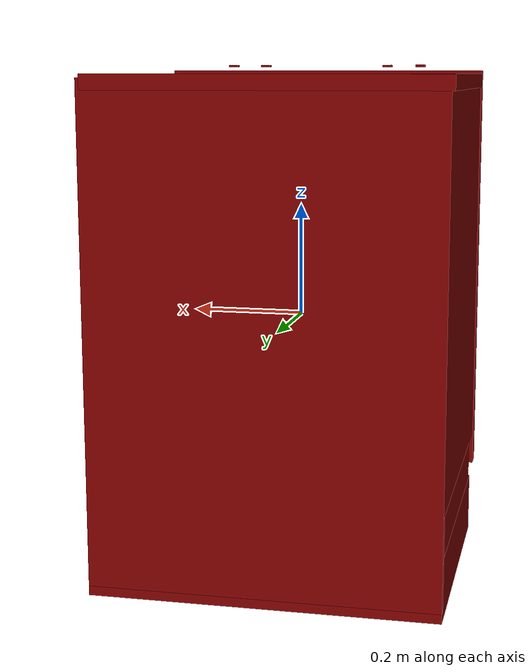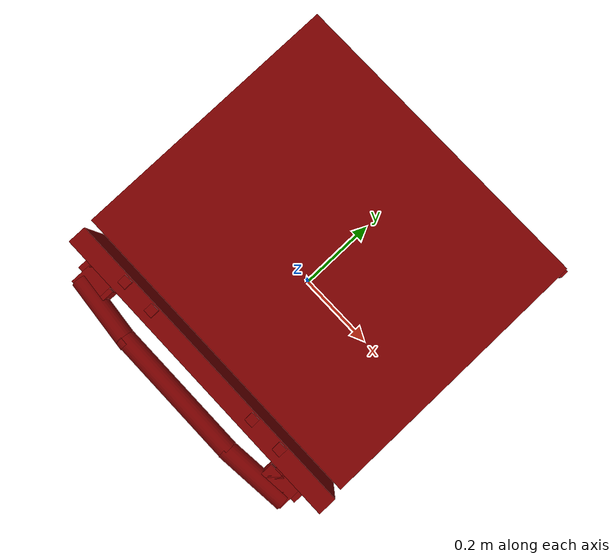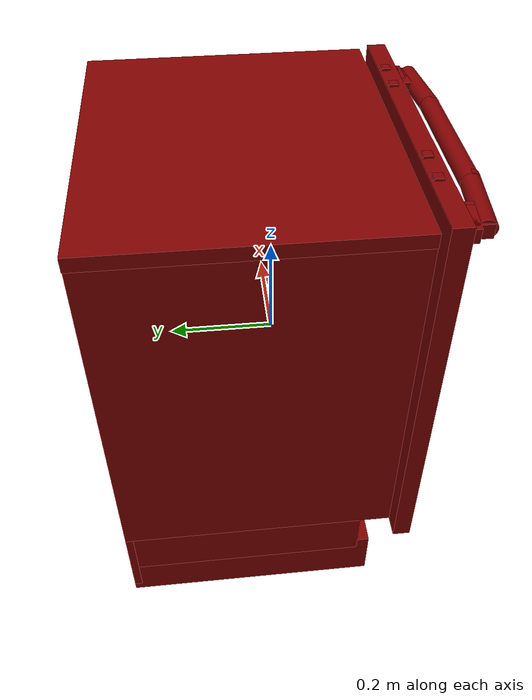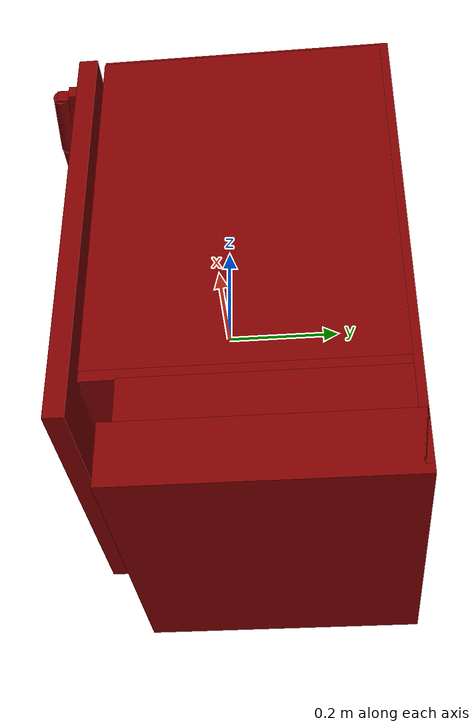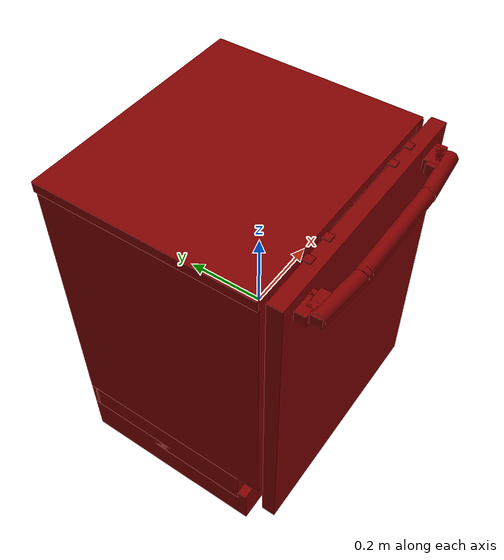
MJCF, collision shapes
<mujoco model="model">
  <compiler angle="radian"/>
  <asset>
    <mesh file="visuals/Body001.obj" name="Body001_vis"/>
    <mesh file="visuals/Button001.obj" name="Button001_vis"/>
    <mesh file="visuals/Button002.obj" name="Button002_vis"/>
    <mesh file="visuals/Button003.obj" name="Button003_vis"/>
    <mesh file="visuals/Button004.obj" name="Button004_vis"/>
    <mesh file="visuals/Container001.obj" name="Container001_vis"/>
    <mesh file="visuals/Container002.obj" name="Container002_vis"/>
    <mesh file="visuals/Door001.obj" name="Door001_vis"/>
    <texture file="visuals/T_BC001.png" name="Body001_material" type="2d"/>
    <material name="Body001_material" rgba="1 1 1 1.0" texture="Body001_material" shininess="0.2512328028678894" specular="2"/>
    <texture file="visuals/T_BC001.png" name="Container001_material" type="2d"/>
    <material name="Container001_material" rgba="1 1 1 1.0" texture="Container001_material" shininess="0.2512328028678894" specular="4"/>
    <texture file="visuals/T_BC001.png" name="Container002_material" type="2d"/>
    <material name="Container002_material" rgba="1 1 1 1.0" texture="Container002_material" shininess="0.2512328028678894" specular="4"/>
    <texture file="visuals/T_BC001.png" name="Door001_material" type="2d"/>
    <material name="Door001_material" rgba="1 1 1 1.0" texture="Door001_material" shininess="0.2512328028678894" specular="2"/>
    <texture file="visuals/T_BC001.png" name="Button001_material" type="2d"/>
    <material name="Button001_material" rgba="1 1 1 1.0" texture="Button001_material" shininess="0.2512328028678894" specular="0.3103448502657381"/>
    <texture file="visuals/T_BC001.png" name="Button002_material" type="2d"/>
    <material name="Button002_material" rgba="1 1 1 1.0" texture="Button002_material" shininess="0.2512328028678894" specular="0.3103448502657381"/>
    <texture file="visuals/T_BC001.png" name="Button003_material" type="2d"/>
    <material name="Button003_material" rgba="1 1 1 1.0" texture="Button003_material" shininess="0.2512328028678894" specular="0.3103448502657381"/>
    <texture file="visuals/T_BC001.png" name="Button004_material" type="2d"/>
    <material name="Button004_material" rgba="1 1 1 1.0" texture="Button004_material" shininess="0.2512328028678894" specular="0.3103448502657381"/>
  </asset>
  <default>
    <default class="visual">
      <geom conaffinity="0" contype="0" group="1" type="mesh"/>
    </default>
    <default class="collision">
      <geom group="0" rgba="0.5 0 0 0.5"/>
    </default>
    <default class="spawn">
      <geom group="0" rgba="1 1 1 0.5" contype="0" conaffinity="0"/>
      <site group="0" rgba="1 1 1 0.5"/>
    </default>
    <default class="region">
      <geom group="1" conaffinity="0" contype="0" rgba="0 1 0 0"/>
    </default>
  </default>
  <worldbody>
    <body>
      <body name="object">
        <geom mesh="Body001_vis" type="mesh" solimp="0.998 0.998 0.001" solref="0.001 1" density="100" friction="0.95 0.3 0.1" class="visual" material="Body001_material"/>
        <geom class="collision" type="box" pos="0.002524 0.073281 -0.395688" size="0.3035244047641754 0.24403943121433258 0.053582970052957535" quat="1.0 0.0 0.0 0.0"/>
        <geom class="collision" type="box" pos="-0.002856 0.056322 0.421351" size="0.3031924366950989 0.26099902391433716 0.012723494321107864" quat="1.0 0.0 0.0 0.0"/>
        <geom class="collision" type="box" pos="0.288190 0.055786 0.078783" size="0.014059570617973804 0.26153454184532166 0.3489367961883545" quat="1.0 0.0 0.0 0.0"/>
        <geom class="collision" type="box" pos="0.002524 0.309837 -0.002558" size="0.3035244345664978 0.0074838194996118546 0.430277943611145" quat="1.0 0.0 0.0 0.0"/>
        <geom class="collision" type="box" pos="-0.286941 0.055786 0.078783" size="0.01405956968665123 0.26153454184532166 0.3489367961883545" quat="1.0 0.0 0.0 0.0"/>
        <geom class="collision" type="box" pos="0.002524 0.085257 -0.317320" size="0.3035244047641754 0.23206323385238647 0.0508718378841877" quat="1.0 0.0 0.0 0.0"/>
        <geom class="collision" type="box" pos="0.002524 0.056321 -0.260355" size="0.3035244047641754 0.26099902391433716 0.009799429215490818" quat="1.0 0.0 0.0 0.0"/>
        <geom class="collision" type="box" pos="0.276601 0.043610 0.331709" size="0.012967003509402275 0.22902917861938477 0.02074013464152813" quat="1.0 0.0 0.0 0.0"/>
        <geom class="collision" type="box" pos="-0.276590 0.043610 0.331709" size="0.012967003509402275 0.22902917861938477 0.02074013464152813" quat="1.0 0.0 0.0 0.0"/>
        <body name="Container001">
          <joint axis="0.0 -1.0 0.0" pos="-0.045364 0.043634 0.116721" limited="true" name="Container001_joint" range="0.0 0.15" type="slide" damping="1" frictionloss="1" armature=".01" stiffness="0.05"/>
          <geom mesh="Container001_vis" type="mesh" solimp="0.998 0.998 0.001" solref="0.001 1" density="100" friction="0.95 0.3 0.1" class="visual" material="Container001_material"/>
          <geom class="collision" type="box" pos="-0.184967 -0.195772 0.131210" size="0.08121334761381149 0.004792514257133007 0.08863174915313721" quat="1.0 0.0 0.0 0.0"/>
          <geom class="collision" type="box" pos="0.265359 0.029831 0.131210" size="0.003997690510004759 0.23039482533931732 0.0886317566037178" quat="1.0 0.0 0.0 0.0"/>
          <geom class="collision" type="box" pos="-0.261340 0.029831 0.131210" size="0.00494289118796587 0.23039482533931732 0.0886317640542984" quat="1.0 0.0 0.0 0.0"/>
          <geom class="collision" type="box" pos="0.003119 0.029831 0.053743" size="0.2692970931529999 0.2303948551416397 0.01116540189832449" quat="1.0 0.0 0.0 0.0"/>
          <geom class="collision" type="box" pos="0.003119 0.256363 0.131210" size="0.2692970931529999 0.0034810062497854233 0.0886317789554596" quat="1.0 0.0 0.0 0.0"/>
          <geom class="collision" type="box" pos="0.183639 -0.195772 0.131210" size="0.08121342211961746 0.00479251891374588 0.08863182365894318" quat="1.0 0.0 0.0 0.0"/>
          <geom class="collision" type="box" pos="-0.002763 -0.195772 0.094356" size="0.13121794164180756 0.004792519845068455 0.051778048276901245" quat="1.0 0.0 0.0 0.0"/>
          <geom class="collision" type="box" pos="0.000625 -0.198133 0.217197" size="0.10349351167678833 0.005681253038346767 0.018857372924685478" quat="1.0 0.0 0.0 0.0"/>
          <geom class="collision" type="box" pos="0.256773 0.029831 0.099798" size="0.007156695704907179 0.23039503395557404 0.05722030624747276" quat="1.0 0.0 0.0 0.0"/>
          <geom class="collision" type="box" pos="0.191162 0.029831 0.090479" size="0.00422767223790288 0.23039613664150238 0.04284008592367172" quat="0.9657436609268188 0.0 -0.2594980001449585 0.0"/>
          <geom class="collision" type="box" pos="-0.153892 0.029831 0.093157" size="0.00422767223790288 0.23039613664150238 0.04284008592367172" quat="0.9915580153465271 0.0 -0.1296636015176773 0.0"/>
          <geom class="collision" type="box" pos="-0.082821 0.029831 0.106004" size="0.00422767223790288 0.23039613664150238 0.047605011612176895" quat="0.9893168210983276 0.0 0.14578141272068024 0.0"/>
          <geom class="collision" type="box" pos="0.059156 0.029831 0.103708" size="0.00422767223790288 0.23039613664150238 0.047605011612176895" quat="0.9893168210983276 0.0 0.14578141272068024 0.0"/>
          <geom class="collision" type="box" pos="-0.220577 0.029831 0.185854" size="0.00422767223790288 0.23039613664150238 0.047605011612176895" quat="0.8643173575401306 0.0 0.5029467940330505 0.0"/>
          <geom class="collision" type="box" pos="0.003764 0.242273 0.131210" size="0.05590777471661568 0.010627182200551033 0.08863186091184616" quat="1.0 0.0 0.0 0.0"/>
        </body>
        <body name="Container002">
          <joint axis="0.0 -1.0 0.0" pos="0.010853 0.035898 -0.188105" limited="true" name="Container002_joint" range="0.0 0.005" type="slide" damping="1" frictionloss="1" armature=".01" stiffness="0.05"/>
          <geom mesh="Container002_vis" type="mesh" solimp="0.998 0.998 0.001" solref="0.001 1" density="100" friction="0.95 0.3 0.1" class="visual" material="Container002_material"/>
          <geom class="collision" type="box" pos="0.000625 -0.189570 -0.034635" size="0.1034935861825943 0.005681255832314491 0.018857384100556374" quat="1.0 0.0 0.0 0.0"/>
          <geom class="collision" type="box" pos="0.004985 -0.196843 -0.171944" size="0.21818412840366364 0.005863730795681477 0.06902369111776352" quat="1.0 0.0 0.0 0.0"/>
          <geom class="collision" type="box" pos="0.258429 0.067700 -0.171944" size="0.003997701220214367 0.20358258485794067 0.06902369856834412" quat="1.0 0.0 0.0 0.0"/>
          <geom class="collision" type="box" pos="-0.261340 0.066902 -0.171944" size="0.004942901432514191 0.20438028872013092 0.06902370601892471" quat="1.0 0.0 0.0 0.0"/>
          <geom class="collision" type="box" pos="-0.000347 0.029831 -0.238295" size="0.2658325433731079 0.23039518296718597 0.002673293463885784" quat="1.0 0.0 0.0 0.0"/>
          <geom class="collision" type="box" pos="-0.000347 0.271050 -0.171944" size="0.2658325433731079 0.0034810113720595837 0.06902372092008591" quat="1.0 0.0 0.0 0.0"/>
          <geom class="collision" type="box" pos="-0.000347 0.259063 -0.171944" size="0.05647459998726845 0.008505134843289852 0.06902372092008591" quat="1.0 0.0 0.0 0.0"/>
          <geom class="collision" type="box" pos="0.239121 -0.163208 -0.171944" size="0.032219722867012024 0.0058637624606490135 0.06902419775724411" quat="0.8909417390823364 0.0 0.0 0.45411768555641174"/>
          <geom class="collision" type="box" pos="-0.235841 -0.166981 -0.171944" size="0.03688233718276024 0.005863762926310301 0.06902419775724411" quat="0.8909419178962708 0.0 -0.0 -0.45411720871925354"/>
          <geom class="collision" type="box" pos="-0.069152 0.184345 -0.204616" size="0.19702862203121185 0.002089082496240735 0.0355546697974205" quat="0.9940279126167297 0.10912609100341797 0.0 0.0"/>
          <geom class="collision" type="box" pos="-0.069152 0.094846 -0.208764" size="0.19702862203121185 0.002089082496240735 0.0355546697974205" quat="0.9749895334243774 -0.22225087881088257 -0.0 0.0"/>
          <geom class="collision" type="box" pos="-0.069152 -0.028854 -0.208764" size="0.19702862203121185 0.002089082496240735 0.0355546697974205" quat="0.9749895334243774 -0.22225087881088257 -0.0 0.0"/>
          <geom class="collision" type="box" pos="-0.069152 -0.148885 -0.208217" size="0.19702862203121185 0.002089082496240735 0.0355546697974205" quat="0.9741819500923157 0.22576439380645752 0.0 0.0"/>
          <geom class="collision" type="box" pos="-0.049453 -0.196767 -0.095572" size="0.0016647067386657 0.0016647067386657 0.010202417150139809" quat="1.0 0.0 0.0 0.0"/>
          <geom class="collision" type="box" pos="-0.049453 -0.185230 -0.062402" size="0.0016647067386657 0.0016647067386657 0.010202417150139809" quat="1.0 0.0 0.0 0.0"/>
          <geom class="collision" type="box" pos="-0.049453 -0.191148 -0.077874" size="0.0016647067386657 0.0016647068550810218 0.010202418081462383" quat="0.9280166029930115 -0.37253880500793457 -0.0 0.0"/>
          <geom class="collision" type="box" pos="0.050424 -0.196767 -0.095572" size="0.0016647067386657 0.0016647067386657 0.010202417150139809" quat="1.0 0.0 0.0 0.0"/>
          <geom class="collision" type="box" pos="0.050424 -0.185230 -0.062402" size="0.0016647067386657 0.0016647067386657 0.010202417150139809" quat="1.0 0.0 0.0 0.0"/>
          <geom class="collision" type="box" pos="0.050424 -0.191148 -0.077874" size="0.0016647067386657 0.0016647068550810218 0.010202418081462383" quat="0.9280166029930115 -0.37253880500793457 -0.0 0.0"/>
          <geom class="collision" type="box" pos="0.239051 0.054574 -0.152882" size="0.004886980634182692 0.1862175464630127 0.08808539807796478" quat="1.0 0.0 0.0 0.0"/>
          <geom class="collision" type="box" pos="0.165117 0.054574 -0.161085" size="0.004886981565505266 0.18621757626533508 0.07988247275352478" quat="1.0 0.0 0.0 0.0"/>
          <geom class="collision" type="box" pos="0.202084 -0.127827 -0.161085" size="0.036966774612665176 0.004886994604021311 0.07988248765468597" quat="1.0 0.0 0.0 0.0"/>
          <geom class="collision" type="box" pos="0.218249 -0.127827 -0.148249" size="0.020801668986678123 0.004886993672698736 0.07988250255584717" quat="1.0 0.0 0.0 0.0"/>
          <geom class="collision" type="box" pos="0.202084 -0.068755 -0.161085" size="0.03696694225072861 0.0035412502475082874 0.07988251745700836" quat="1.0 0.0 0.0 0.0"/>
          <geom class="collision" type="box" pos="0.218249 -0.068755 -0.152443" size="0.02080174721777439 0.003541248617693782 0.07568834722042084" quat="1.0 0.0 0.0 0.0"/>
          <geom class="collision" type="box" pos="0.202084 -0.007217 -0.161085" size="0.03696694225072861 0.003541251178830862 0.07988254725933075" quat="1.0 0.0 0.0 0.0"/>
          <geom class="collision" type="box" pos="0.218249 -0.007217 -0.152443" size="0.02080174721777439 0.0035412495490163565 0.07568837702274323" quat="1.0 0.0 0.0 0.0"/>
          <geom class="collision" type="box" pos="0.202084 0.063045 -0.161085" size="0.03696681931614876 0.009050345048308372 0.07988257706165314" quat="1.0 0.0 0.0 0.0"/>
          <geom class="collision" type="box" pos="0.218249 0.063045 -0.148249" size="0.020801693201065063 0.009050345979630947 0.07988259196281433" quat="1.0 0.0 0.0 0.0"/>
          <geom class="collision" type="box" pos="0.202084 0.132954 -0.161085" size="0.03696694225072861 0.0035412530414760113 0.07988260686397552" quat="1.0 0.0 0.0 0.0"/>
          <geom class="collision" type="box" pos="0.218249 0.132954 -0.152443" size="0.02080174721777439 0.0035412514116615057 0.075688436627388" quat="1.0 0.0 0.0 0.0"/>
          <geom class="collision" type="box" pos="0.202084 0.186851 -0.161085" size="0.03696694225072861 0.003541253972798586 0.07988263666629791" quat="1.0 0.0 0.0 0.0"/>
          <geom class="collision" type="box" pos="0.218249 0.186851 -0.152443" size="0.02080174721777439 0.0035412523429840803 0.07568846642971039" quat="1.0 0.0 0.0 0.0"/>
          <geom class="collision" type="box" pos="0.202084 0.241205 -0.161085" size="0.03696686401963234 0.004887005779892206 0.0798826664686203" quat="1.0 0.0 0.0 0.0"/>
          <geom class="collision" type="box" pos="0.218249 0.241205 -0.148249" size="0.020801713690161705 0.004887004848569632 0.0798826813697815" quat="1.0 0.0 0.0 0.0"/>
          <geom class="collision" type="box" pos="0.243658 0.013207 -0.085139" size="0.004589611664414406 0.005448661744594574 0.050359081476926804" quat="1.0 0.0 0.0 0.0"/>
          <geom class="collision" type="box" pos="0.254625 0.013207 -0.111503" size="0.009390005841851234 0.0065195900388062 0.023995324969291687" quat="1.0 0.0 0.0 0.0"/>
          <geom class="collision" type="box" pos="0.249108 0.013207 -0.108955" size="0.00789667945355177 0.0065195900388062 0.026543479412794113" quat="1.0 0.0 0.0 0.0"/>
          <geom class="collision" type="box" pos="0.243658 0.109673 -0.085139" size="0.004589611664414406 0.0054486580193042755 0.05035904794931412" quat="1.0 0.0 0.0 0.0"/>
          <geom class="collision" type="box" pos="0.254625 0.109673 -0.111503" size="0.009390005841851234 0.0065640294924378395 0.02399534545838833" quat="1.0 0.0 0.0 0.0"/>
          <geom class="collision" type="box" pos="0.249108 0.109673 -0.108955" size="0.00789667945355177 0.006564028095453978 0.026543496176600456" quat="1.0 0.0 0.0 0.0"/>
          <geom class="collision" type="box" pos="0.243658 0.060679 -0.097264" size="0.0040933191776275635 0.014025634154677391 0.032789286226034164" quat="1.0 0.0 0.0 0.0"/>
          <geom class="collision" type="box" pos="0.245400 0.060926 -0.029604" size="0.014717435464262962 0.06572192162275314 0.005241771228611469" quat="1.0 0.0 0.0 0.0"/>
        </body>
        <body name="Door001">
          <joint axis="1.0 0.0 0.0" pos="0.000625 -0.215914 -0.285297" limited="true" name="Door001_joint" range="0.0 0.5235987755982988" type="hinge" damping="1" frictionloss="1" armature=".01" stiffness="10" springref="-1"/>
          <geom mesh="Door001_vis" type="mesh" solimp="0.998 0.998 0.001" solref="0.001 1" density="100" friction="0.95 0.3 0.1" class="visual" material="Door001_material"/>
          <geom class="collision" type="cylinder" pos="0.000625 -0.305208 0.397315" size="0.01735132746398449 0.13081713020801544" quat="0.7071068286895752 -0.0 0.7071067690849304 0.0"/>
          <geom class="collision" type="cylinder" pos="0.191832 -0.299578 0.397315" size="0.01735132746398449 0.06575724482536316" quat="0.7062416076660156 -0.03496948629617691 0.7062415480613708 0.03496948257088661"/>
          <geom class="collision" type="cylinder" pos="-0.184655 -0.299651 0.397315" size="0.01735132746398449 0.06979123502969742" quat="0.7062416076660156 0.03496948629617691 0.7062415480613708 -0.03496948257088661"/>
          <geom class="collision" type="box" pos="0.233984 -0.278187 0.397463" size="0.026319457218050957 0.0251456331461668 0.012857450172305107" quat="1.0 0.0 0.0 0.0"/>
          <geom class="collision" type="box" pos="0.221953 -0.284047 0.397463" size="0.024539422243833542 0.019285371527075768 0.012857450172305107" quat="1.0 0.0 0.0 0.0"/>
          <geom class="collision" type="box" pos="0.243102 -0.266301 0.397463" size="0.026319457218050957 0.013259662315249443 0.012857450172305107" quat="1.0 0.0 0.0 0.0"/>
          <geom class="collision" type="box" pos="0.000625 -0.237309 0.054620" size="0.3032536208629608 0.017272813245654106 0.3847430646419525" quat="1.0 0.0 0.0 0.0"/>
          <geom class="collision" type="box" pos="-0.233591 -0.278187 0.397463" size="0.026319457218050957 0.0251456331461668 0.012857450172305107" quat="1.0 0.0 0.0 0.0"/>
          <geom class="collision" type="box" pos="-0.222856 -0.284047 0.397463" size="0.024539422243833542 0.019285371527075768 0.012857450172305107" quat="1.0 0.0 0.0 0.0"/>
          <geom class="collision" type="box" pos="-0.243535 -0.266301 0.397463" size="0.026319457218050957 0.013259662315249443 0.012857450172305107" quat="1.0 0.0 0.0 0.0"/>
          <body name="Button001">
            <joint axis="0.0 0.0 -1.0" pos="-0.185656 -0.229554 0.447121" limited="true" name="Button001_joint" range="0.0 0.0015" type="slide" damping="1" frictionloss="1" armature=".01" stiffness="0.2" springref="-0.1"/>
            <geom mesh="Button001_vis" type="mesh" solimp="0.998 0.998 0.001" solref="0.001 1" density="100" friction="0.95 0.3 0.1" class="visual" material="Button001_material"/>
            <geom class="collision" type="box" pos="-0.185592 -0.229577 0.448361" size="0.00852269772440195 0.00852269772440195 0.002091684378683567" quat="1.0 0.0 0.0 0.0"/>
          </body>
          <body name="Button002">
            <joint axis="0.0 0.0 -1.0" pos="-0.121631 -0.229554 0.447121" limited="true" name="Button002_joint" range="0.0 0.0015" type="slide" damping="1" frictionloss="1" armature=".01" stiffness="0.2" springref="-0.1"/>
            <geom mesh="Button002_vis" type="mesh" solimp="0.998 0.998 0.001" solref="0.001 1" density="100" friction="0.95 0.3 0.1" class="visual" material="Button002_material"/>
            <geom class="collision" type="box" pos="-0.121548 -0.229577 0.448361" size="0.00852269772440195 0.00852269772440195 0.002091684378683567" quat="1.0 0.0 0.0 0.0"/>
          </body>
          <body name="Button003">
            <joint axis="0.0 0.0 -1.0" pos="0.119295 -0.229554 0.447121" limited="true" name="Button003_joint" range="0.0 0.0015" type="slide" damping="1" frictionloss="1" armature=".01" stiffness="0.2" springref="-0.1"/>
            <geom mesh="Button003_vis" type="mesh" solimp="0.998 0.998 0.001" solref="0.001 1" density="100" friction="0.95 0.3 0.1" class="visual" material="Button003_material"/>
            <geom class="collision" type="box" pos="0.119236 -0.229577 0.448361" size="0.00852269772440195 0.00852269772440195 0.002091684378683567" quat="1.0 0.0 0.0 0.0"/>
          </body>
          <body name="Button004">
            <joint axis="0.0 0.0 -1.0" pos="0.183658 -0.229554 0.447121" limited="true" name="Button004_joint" range="0.0 0.0015" type="slide" damping="1" frictionloss="1" armature=".01" stiffness="0.2" springref="-0.1"/>
            <geom mesh="Button004_vis" type="mesh" solimp="0.998 0.998 0.001" solref="0.001 1" density="100" friction="0.95 0.3 0.1" class="visual" material="Button004_material"/>
            <geom class="collision" type="box" pos="0.183639 -0.229577 0.448361" size="0.00852269772440195 0.00852269772440195 0.002091684378683567" quat="1.0 0.0 0.0 0.0"/>
          </body>
        </body>
        <geom class="region" name="reg_main" type="box" pos="0.0006245000000000001 0.0332635 -0.0025410000000000155" size="0.3016255 0.2877995 0.447911"/>
        <geom class="region" name="reg_int" type="box" pos="0.0006259999999999877 0.049810999999999994 0.07787549999999999" size="0.278601 0.250602 0.3279185"/>
      </body>
    </body>
  </worldbody>
  <actuator>
    <motor name="Container001_joint_actuator" joint="Container001_joint" gear="10"/>
    <motor name="Container002_joint_actuator" joint="Container002_joint" gear="10"/>
    <motor name="Door001_joint_actuator" joint="Door001_joint" gear="50"/>
    <motor name="Button001_joint_actuator" joint="Button001_joint" gear="0.5"/>
    <motor name="Button002_joint_actuator" joint="Button002_joint" gear="0.5"/>
    <motor name="Button003_joint_actuator" joint="Button003_joint" gear="0.5"/>
    <motor name="Button004_joint_actuator" joint="Button004_joint" gear="0.5"/>
  </actuator>
</mujoco>
